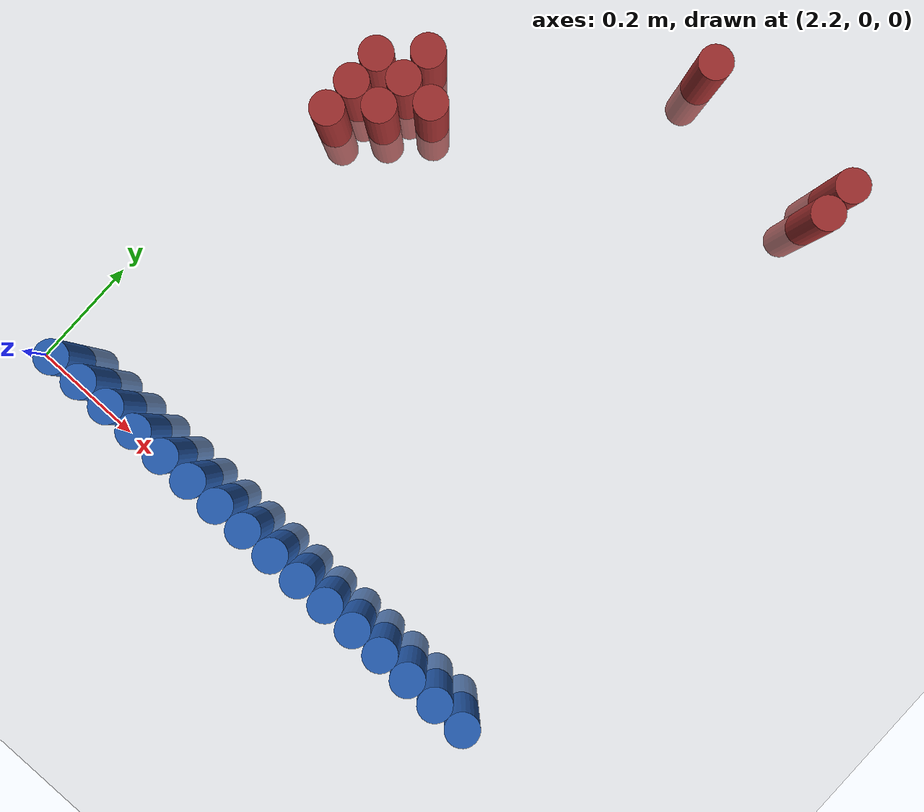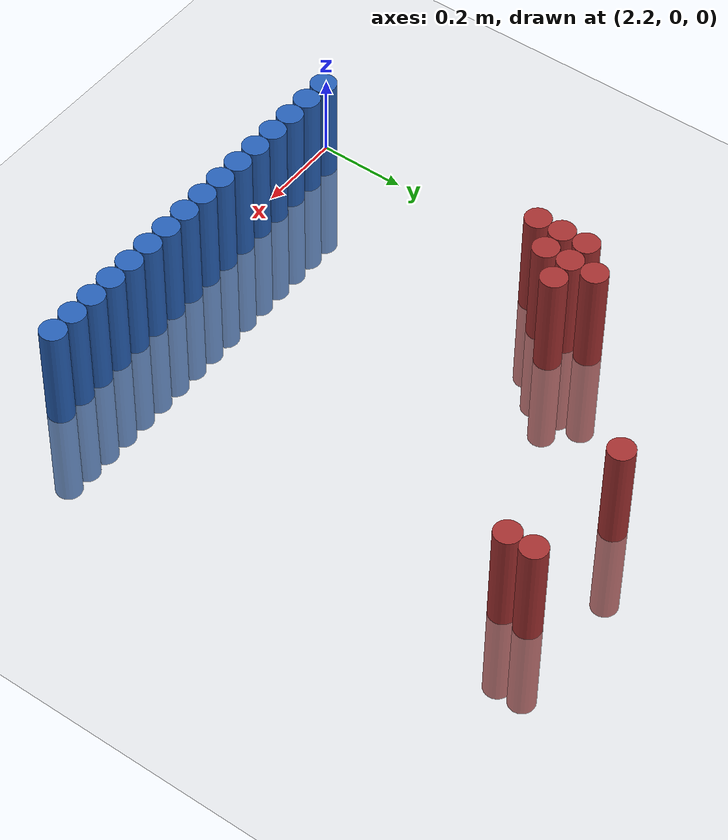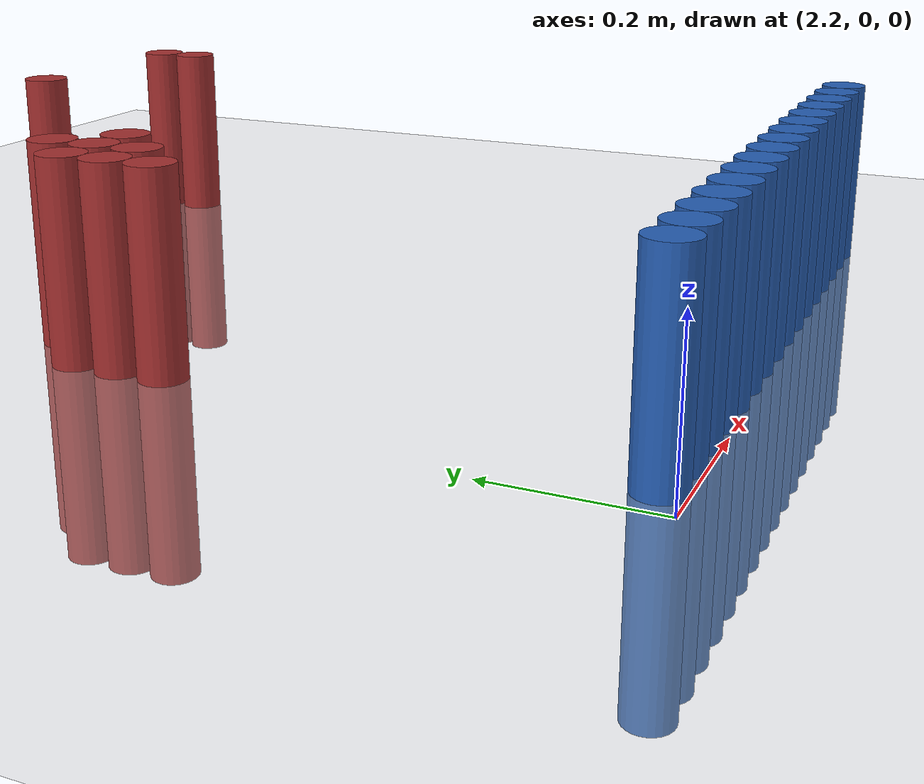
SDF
<sdf version="1.6">
 <world name="default">
  <model name="ground_plane">
   <static>1</static>
   <link name="link">
    <collision name="collision">
     <geometry><plane><normal>0 0 1</normal><size>100 100</size></plane></geometry>
     <surface><friction><ode><mu>100</mu><mu2>50</mu2></ode></friction></surface>
    </collision>
    <visual name="visual">
     <cast_shadows>0</cast_shadows>
     <geometry><plane><normal>0 0 1</normal><size>100 100</size></plane></geometry>
     <material>
      <script><uri>file://media/materials/scripts/gazebo.material</uri><name>Gazebo/Grey</name></script>
     </material>
    </visual>
   </link>
  </model>
  <model name="unit_cylinder_150">
   <static>1</static>
   <pose>2.730000 1.110000 0.000000 0.000000 0.000000 0.000000</pose>
   <link name="link">
    <inertial>
     <mass>1</mass>
     <inertia><ixx>0.145833</ixx><ixy>0</ixy><ixz>0</ixz><iyy>0.145833</iyy><iyz>0</iyz><izz>0.125</izz></inertia>
    </inertial>
    <collision name="collision">
     <geometry><cylinder><radius>0.030000</radius><length>0.5</length></cylinder></geometry>
    </collision>
    <visual name="visual">
     <geometry><cylinder><radius>0.030000</radius><length>0.5</length></cylinder></geometry>
     <material>
      <ambient>0.648000 0.192000 0.192000 1</ambient>
      <diffuse>0.648000 0.192000 0.192000 1</diffuse>
     </material>
     <material>
      <script><name>Gazebo/Grey</name><uri>file://media/materials/scripts/gazebo.material</uri></script>
     </material>
    </visual>
   </link>
  </model>
  <model name="unit_cylinder_151">
   <static>1</static>
   <pose>3.030000 1.110000 0.000000 0.000000 0.000000 0.000000</pose>
   <link name="link">
    <inertial>
     <mass>1</mass>
     <inertia><ixx>0.145833</ixx><ixy>0</ixy><ixz>0</ixz><iyy>0.145833</iyy><iyz>0</iyz><izz>0.125</izz></inertia>
    </inertial>
    <collision name="collision">
     <geometry><cylinder><radius>0.030000</radius><length>0.5</length></cylinder></geometry>
    </collision>
    <visual name="visual">
     <geometry><cylinder><radius>0.030000</radius><length>0.5</length></cylinder></geometry>
     <material>
      <ambient>0.648000 0.192000 0.192000 1</ambient>
      <diffuse>0.648000 0.192000 0.192000 1</diffuse>
     </material>
     <material>
      <script><name>Gazebo/Grey</name><uri>file://media/materials/scripts/gazebo.material</uri></script>
     </material>
    </visual>
   </link>
  </model>
  <model name="unit_cylinder_153">
   <static>1</static>
   <pose>3.030000 1.050000 0.000000 0.000000 0.000000 0.000000</pose>
   <link name="link">
    <inertial>
     <mass>1</mass>
     <inertia><ixx>0.145833</ixx><ixy>0</ixy><ixz>0</ixz><iyy>0.145833</iyy><iyz>0</iyz><izz>0.125</izz></inertia>
    </inertial>
    <collision name="collision">
     <geometry><cylinder><radius>0.030000</radius><length>0.5</length></cylinder></geometry>
    </collision>
    <visual name="visual">
     <geometry><cylinder><radius>0.030000</radius><length>0.5</length></cylinder></geometry>
     <material>
      <ambient>0.648000 0.192000 0.192000 1</ambient>
      <diffuse>0.648000 0.192000 0.192000 1</diffuse>
     </material>
     <material>
      <script><name>Gazebo/Grey</name><uri>file://media/materials/scripts/gazebo.material</uri></script>
     </material>
    </visual>
   </link>
  </model>
  <model name="unit_cylinder_158">
   <static>1</static>
   <pose>2.370000 0.810000 0.000000 0.000000 0.000000 0.000000</pose>
   <link name="link">
    <inertial>
     <mass>1</mass>
     <inertia><ixx>0.145833</ixx><ixy>0</ixy><ixz>0</ixz><iyy>0.145833</iyy><iyz>0</iyz><izz>0.125</izz></inertia>
    </inertial>
    <collision name="collision">
     <geometry><cylinder><radius>0.030000</radius><length>0.5</length></cylinder></geometry>
    </collision>
    <visual name="visual">
     <geometry><cylinder><radius>0.030000</radius><length>0.5</length></cylinder></geometry>
     <material>
      <ambient>0.648000 0.192000 0.192000 1</ambient>
      <diffuse>0.648000 0.192000 0.192000 1</diffuse>
     </material>
     <material>
      <script><name>Gazebo/Grey</name><uri>file://media/materials/scripts/gazebo.material</uri></script>
     </material>
    </visual>
   </link>
  </model>
  <model name="unit_cylinder_162">
   <static>1</static>
   <pose>2.310000 0.750000 0.000000 0.000000 0.000000 0.000000</pose>
   <link name="link">
    <inertial>
     <mass>1</mass>
     <inertia><ixx>0.145833</ixx><ixy>0</ixy><ixz>0</ixz><iyy>0.145833</iyy><iyz>0</iyz><izz>0.125</izz></inertia>
    </inertial>
    <collision name="collision">
     <geometry><cylinder><radius>0.030000</radius><length>0.5</length></cylinder></geometry>
    </collision>
    <visual name="visual">
     <geometry><cylinder><radius>0.030000</radius><length>0.5</length></cylinder></geometry>
     <material>
      <ambient>0.648000 0.192000 0.192000 1</ambient>
      <diffuse>0.648000 0.192000 0.192000 1</diffuse>
     </material>
     <material>
      <script><name>Gazebo/Grey</name><uri>file://media/materials/scripts/gazebo.material</uri></script>
     </material>
    </visual>
   </link>
  </model>
  <model name="unit_cylinder_163">
   <static>1</static>
   <pose>2.370000 0.750000 0.000000 0.000000 0.000000 0.000000</pose>
   <link name="link">
    <inertial>
     <mass>1</mass>
     <inertia><ixx>0.145833</ixx><ixy>0</ixy><ixz>0</ixz><iyy>0.145833</iyy><iyz>0</iyz><izz>0.125</izz></inertia>
    </inertial>
    <collision name="collision">
     <geometry><cylinder><radius>0.030000</radius><length>0.5</length></cylinder></geometry>
    </collision>
    <visual name="visual">
     <geometry><cylinder><radius>0.030000</radius><length>0.5</length></cylinder></geometry>
     <material>
      <ambient>0.648000 0.192000 0.192000 1</ambient>
      <diffuse>0.648000 0.192000 0.192000 1</diffuse>
     </material>
     <material>
      <script><name>Gazebo/Grey</name><uri>file://media/materials/scripts/gazebo.material</uri></script>
     </material>
    </visual>
   </link>
  </model>
  <model name="unit_cylinder_164">
   <static>1</static>
   <pose>2.430000 0.750000 0.000000 0.000000 0.000000 0.000000</pose>
   <link name="link">
    <inertial>
     <mass>1</mass>
     <inertia><ixx>0.145833</ixx><ixy>0</ixy><ixz>0</ixz><iyy>0.145833</iyy><iyz>0</iyz><izz>0.125</izz></inertia>
    </inertial>
    <collision name="collision">
     <geometry><cylinder><radius>0.030000</radius><length>0.5</length></cylinder></geometry>
    </collision>
    <visual name="visual">
     <geometry><cylinder><radius>0.030000</radius><length>0.5</length></cylinder></geometry>
     <material>
      <ambient>0.648000 0.192000 0.192000 1</ambient>
      <diffuse>0.648000 0.192000 0.192000 1</diffuse>
     </material>
     <material>
      <script><name>Gazebo/Grey</name><uri>file://media/materials/scripts/gazebo.material</uri></script>
     </material>
    </visual>
   </link>
  </model>
  <model name="unit_cylinder_167">
   <static>1</static>
   <pose>2.310000 0.690000 0.000000 0.000000 0.000000 0.000000</pose>
   <link name="link">
    <inertial>
     <mass>1</mass>
     <inertia><ixx>0.145833</ixx><ixy>0</ixy><ixz>0</ixz><iyy>0.145833</iyy><iyz>0</iyz><izz>0.125</izz></inertia>
    </inertial>
    <collision name="collision">
     <geometry><cylinder><radius>0.030000</radius><length>0.5</length></cylinder></geometry>
    </collision>
    <visual name="visual">
     <geometry><cylinder><radius>0.030000</radius><length>0.5</length></cylinder></geometry>
     <material>
      <ambient>0.648000 0.192000 0.192000 1</ambient>
      <diffuse>0.648000 0.192000 0.192000 1</diffuse>
     </material>
     <material>
      <script><name>Gazebo/Grey</name><uri>file://media/materials/scripts/gazebo.material</uri></script>
     </material>
    </visual>
   </link>
  </model>
  <model name="unit_cylinder_168">
   <static>1</static>
   <pose>2.370000 0.690000 0.000000 0.000000 0.000000 0.000000</pose>
   <link name="link">
    <inertial>
     <mass>1</mass>
     <inertia><ixx>0.145833</ixx><ixy>0</ixy><ixz>0</ixz><iyy>0.145833</iyy><iyz>0</iyz><izz>0.125</izz></inertia>
    </inertial>
    <collision name="collision">
     <geometry><cylinder><radius>0.030000</radius><length>0.5</length></cylinder></geometry>
    </collision>
    <visual name="visual">
     <geometry><cylinder><radius>0.030000</radius><length>0.5</length></cylinder></geometry>
     <material>
      <ambient>0.648000 0.192000 0.192000 1</ambient>
      <diffuse>0.648000 0.192000 0.192000 1</diffuse>
     </material>
     <material>
      <script><name>Gazebo/Grey</name><uri>file://media/materials/scripts/gazebo.material</uri></script>
     </material>
    </visual>
   </link>
  </model>
  <model name="unit_cylinder_169">
   <static>1</static>
   <pose>2.310000 0.630000 0.000000 0.000000 0.000000 0.000000</pose>
   <link name="link">
    <inertial>
     <mass>1</mass>
     <inertia><ixx>0.145833</ixx><ixy>0</ixy><ixz>0</ixz><iyy>0.145833</iyy><iyz>0</iyz><izz>0.125</izz></inertia>
    </inertial>
    <collision name="collision">
     <geometry><cylinder><radius>0.030000</radius><length>0.5</length></cylinder></geometry>
    </collision>
    <visual name="visual">
     <geometry><cylinder><radius>0.030000</radius><length>0.5</length></cylinder></geometry>
     <material>
      <ambient>0.648000 0.192000 0.192000 1</ambient>
      <diffuse>0.648000 0.192000 0.192000 1</diffuse>
     </material>
     <material>
      <script><name>Gazebo/Grey</name><uri>file://media/materials/scripts/gazebo.material</uri></script>
     </material>
    </visual>
   </link>
  </model>
  <model name="unit_cylinder_181">
   <static>1</static>
   <pose>2.250000 0.030000 0.000000 0.000000 0.000000 0.000000</pose>
   <link name="link">
    <inertial>
     <mass>1</mass>
     <inertia><ixx>0.145833</ixx><ixy>0</ixy><ixz>0</ixz><iyy>0.145833</iyy><iyz>0</iyz><izz>0.125</izz></inertia>
    </inertial>
    <collision name="collision">
     <geometry><cylinder><radius>0.030000</radius><length>0.5</length></cylinder></geometry>
    </collision>
    <visual name="visual">
     <geometry><cylinder><radius>0.030000</radius><length>0.5</length></cylinder></geometry>
     <material>
      <ambient>0.152000 0.379000 0.720000 1</ambient>
      <diffuse>0.152000 0.379000 0.720000 1</diffuse>
     </material>
     <material>
      <script><name>Gazebo/Grey</name><uri>file://media/materials/scripts/gazebo.material</uri></script>
     </material>
    </visual>
   </link>
  </model>
  <model name="unit_cylinder_182">
   <static>1</static>
   <pose>2.310000 0.030000 0.000000 0.000000 0.000000 0.000000</pose>
   <link name="link">
    <inertial>
     <mass>1</mass>
     <inertia><ixx>0.145833</ixx><ixy>0</ixy><ixz>0</ixz><iyy>0.145833</iyy><iyz>0</iyz><izz>0.125</izz></inertia>
    </inertial>
    <collision name="collision">
     <geometry><cylinder><radius>0.030000</radius><length>0.5</length></cylinder></geometry>
    </collision>
    <visual name="visual">
     <geometry><cylinder><radius>0.030000</radius><length>0.5</length></cylinder></geometry>
     <material>
      <ambient>0.152000 0.379000 0.720000 1</ambient>
      <diffuse>0.152000 0.379000 0.720000 1</diffuse>
     </material>
     <material>
      <script><name>Gazebo/Grey</name><uri>file://media/materials/scripts/gazebo.material</uri></script>
     </material>
    </visual>
   </link>
  </model>
  <model name="unit_cylinder_183">
   <static>1</static>
   <pose>2.370000 0.030000 0.000000 0.000000 0.000000 0.000000</pose>
   <link name="link">
    <inertial>
     <mass>1</mass>
     <inertia><ixx>0.145833</ixx><ixy>0</ixy><ixz>0</ixz><iyy>0.145833</iyy><iyz>0</iyz><izz>0.125</izz></inertia>
    </inertial>
    <collision name="collision">
     <geometry><cylinder><radius>0.030000</radius><length>0.5</length></cylinder></geometry>
    </collision>
    <visual name="visual">
     <geometry><cylinder><radius>0.030000</radius><length>0.5</length></cylinder></geometry>
     <material>
      <ambient>0.152000 0.379000 0.720000 1</ambient>
      <diffuse>0.152000 0.379000 0.720000 1</diffuse>
     </material>
     <material>
      <script><name>Gazebo/Grey</name><uri>file://media/materials/scripts/gazebo.material</uri></script>
     </material>
    </visual>
   </link>
  </model>
  <model name="unit_cylinder_184">
   <static>1</static>
   <pose>2.430000 0.030000 0.000000 0.000000 0.000000 0.000000</pose>
   <link name="link">
    <inertial>
     <mass>1</mass>
     <inertia><ixx>0.145833</ixx><ixy>0</ixy><ixz>0</ixz><iyy>0.145833</iyy><iyz>0</iyz><izz>0.125</izz></inertia>
    </inertial>
    <collision name="collision">
     <geometry><cylinder><radius>0.030000</radius><length>0.5</length></cylinder></geometry>
    </collision>
    <visual name="visual">
     <geometry><cylinder><radius>0.030000</radius><length>0.5</length></cylinder></geometry>
     <material>
      <ambient>0.152000 0.379000 0.720000 1</ambient>
      <diffuse>0.152000 0.379000 0.720000 1</diffuse>
     </material>
     <material>
      <script><name>Gazebo/Grey</name><uri>file://media/materials/scripts/gazebo.material</uri></script>
     </material>
    </visual>
   </link>
  </model>
  <model name="unit_cylinder_185">
   <static>1</static>
   <pose>2.490000 0.030000 0.000000 0.000000 0.000000 0.000000</pose>
   <link name="link">
    <inertial>
     <mass>1</mass>
     <inertia><ixx>0.145833</ixx><ixy>0</ixy><ixz>0</ixz><iyy>0.145833</iyy><iyz>0</iyz><izz>0.125</izz></inertia>
    </inertial>
    <collision name="collision">
     <geometry><cylinder><radius>0.030000</radius><length>0.5</length></cylinder></geometry>
    </collision>
    <visual name="visual">
     <geometry><cylinder><radius>0.030000</radius><length>0.5</length></cylinder></geometry>
     <material>
      <ambient>0.152000 0.379000 0.720000 1</ambient>
      <diffuse>0.152000 0.379000 0.720000 1</diffuse>
     </material>
     <material>
      <script><name>Gazebo/Grey</name><uri>file://media/materials/scripts/gazebo.material</uri></script>
     </material>
    </visual>
   </link>
  </model>
  <model name="unit_cylinder_186">
   <static>1</static>
   <pose>2.550000 0.030000 0.000000 0.000000 0.000000 0.000000</pose>
   <link name="link">
    <inertial>
     <mass>1</mass>
     <inertia><ixx>0.145833</ixx><ixy>0</ixy><ixz>0</ixz><iyy>0.145833</iyy><iyz>0</iyz><izz>0.125</izz></inertia>
    </inertial>
    <collision name="collision">
     <geometry><cylinder><radius>0.030000</radius><length>0.5</length></cylinder></geometry>
    </collision>
    <visual name="visual">
     <geometry><cylinder><radius>0.030000</radius><length>0.5</length></cylinder></geometry>
     <material>
      <ambient>0.152000 0.379000 0.720000 1</ambient>
      <diffuse>0.152000 0.379000 0.720000 1</diffuse>
     </material>
     <material>
      <script><name>Gazebo/Grey</name><uri>file://media/materials/scripts/gazebo.material</uri></script>
     </material>
    </visual>
   </link>
  </model>
  <model name="unit_cylinder_187">
   <static>1</static>
   <pose>2.610000 0.030000 0.000000 0.000000 0.000000 0.000000</pose>
   <link name="link">
    <inertial>
     <mass>1</mass>
     <inertia><ixx>0.145833</ixx><ixy>0</ixy><ixz>0</ixz><iyy>0.145833</iyy><iyz>0</iyz><izz>0.125</izz></inertia>
    </inertial>
    <collision name="collision">
     <geometry><cylinder><radius>0.030000</radius><length>0.5</length></cylinder></geometry>
    </collision>
    <visual name="visual">
     <geometry><cylinder><radius>0.030000</radius><length>0.5</length></cylinder></geometry>
     <material>
      <ambient>0.152000 0.379000 0.720000 1</ambient>
      <diffuse>0.152000 0.379000 0.720000 1</diffuse>
     </material>
     <material>
      <script><name>Gazebo/Grey</name><uri>file://media/materials/scripts/gazebo.material</uri></script>
     </material>
    </visual>
   </link>
  </model>
  <model name="unit_cylinder_188">
   <static>1</static>
   <pose>2.670000 0.030000 0.000000 0.000000 0.000000 0.000000</pose>
   <link name="link">
    <inertial>
     <mass>1</mass>
     <inertia><ixx>0.145833</ixx><ixy>0</ixy><ixz>0</ixz><iyy>0.145833</iyy><iyz>0</iyz><izz>0.125</izz></inertia>
    </inertial>
    <collision name="collision">
     <geometry><cylinder><radius>0.030000</radius><length>0.5</length></cylinder></geometry>
    </collision>
    <visual name="visual">
     <geometry><cylinder><radius>0.030000</radius><length>0.5</length></cylinder></geometry>
     <material>
      <ambient>0.152000 0.379000 0.720000 1</ambient>
      <diffuse>0.152000 0.379000 0.720000 1</diffuse>
     </material>
     <material>
      <script><name>Gazebo/Grey</name><uri>file://media/materials/scripts/gazebo.material</uri></script>
     </material>
    </visual>
   </link>
  </model>
  <model name="unit_cylinder_189">
   <static>1</static>
   <pose>2.730000 0.030000 0.000000 0.000000 0.000000 0.000000</pose>
   <link name="link">
    <inertial>
     <mass>1</mass>
     <inertia><ixx>0.145833</ixx><ixy>0</ixy><ixz>0</ixz><iyy>0.145833</iyy><iyz>0</iyz><izz>0.125</izz></inertia>
    </inertial>
    <collision name="collision">
     <geometry><cylinder><radius>0.030000</radius><length>0.5</length></cylinder></geometry>
    </collision>
    <visual name="visual">
     <geometry><cylinder><radius>0.030000</radius><length>0.5</length></cylinder></geometry>
     <material>
      <ambient>0.152000 0.379000 0.720000 1</ambient>
      <diffuse>0.152000 0.379000 0.720000 1</diffuse>
     </material>
     <material>
      <script><name>Gazebo/Grey</name><uri>file://media/materials/scripts/gazebo.material</uri></script>
     </material>
    </visual>
   </link>
  </model>
  <model name="unit_cylinder_190">
   <static>1</static>
   <pose>2.790000 0.030000 0.000000 0.000000 0.000000 0.000000</pose>
   <link name="link">
    <inertial>
     <mass>1</mass>
     <inertia><ixx>0.145833</ixx><ixy>0</ixy><ixz>0</ixz><iyy>0.145833</iyy><iyz>0</iyz><izz>0.125</izz></inertia>
    </inertial>
    <collision name="collision">
     <geometry><cylinder><radius>0.030000</radius><length>0.5</length></cylinder></geometry>
    </collision>
    <visual name="visual">
     <geometry><cylinder><radius>0.030000</radius><length>0.5</length></cylinder></geometry>
     <material>
      <ambient>0.152000 0.379000 0.720000 1</ambient>
      <diffuse>0.152000 0.379000 0.720000 1</diffuse>
     </material>
     <material>
      <script><name>Gazebo/Grey</name><uri>file://media/materials/scripts/gazebo.material</uri></script>
     </material>
    </visual>
   </link>
  </model>
  <model name="unit_cylinder_191">
   <static>1</static>
   <pose>2.850000 0.030000 0.000000 0.000000 0.000000 0.000000</pose>
   <link name="link">
    <inertial>
     <mass>1</mass>
     <inertia><ixx>0.145833</ixx><ixy>0</ixy><ixz>0</ixz><iyy>0.145833</iyy><iyz>0</iyz><izz>0.125</izz></inertia>
    </inertial>
    <collision name="collision">
     <geometry><cylinder><radius>0.030000</radius><length>0.5</length></cylinder></geometry>
    </collision>
    <visual name="visual">
     <geometry><cylinder><radius>0.030000</radius><length>0.5</length></cylinder></geometry>
     <material>
      <ambient>0.152000 0.379000 0.720000 1</ambient>
      <diffuse>0.152000 0.379000 0.720000 1</diffuse>
     </material>
     <material>
      <script><name>Gazebo/Grey</name><uri>file://media/materials/scripts/gazebo.material</uri></script>
     </material>
    </visual>
   </link>
  </model>
  <model name="unit_cylinder_192">
   <static>1</static>
   <pose>2.910000 0.030000 0.000000 0.000000 0.000000 0.000000</pose>
   <link name="link">
    <inertial>
     <mass>1</mass>
     <inertia><ixx>0.145833</ixx><ixy>0</ixy><ixz>0</ixz><iyy>0.145833</iyy><iyz>0</iyz><izz>0.125</izz></inertia>
    </inertial>
    <collision name="collision">
     <geometry><cylinder><radius>0.030000</radius><length>0.5</length></cylinder></geometry>
    </collision>
    <visual name="visual">
     <geometry><cylinder><radius>0.030000</radius><length>0.5</length></cylinder></geometry>
     <material>
      <ambient>0.152000 0.379000 0.720000 1</ambient>
      <diffuse>0.152000 0.379000 0.720000 1</diffuse>
     </material>
     <material>
      <script><name>Gazebo/Grey</name><uri>file://media/materials/scripts/gazebo.material</uri></script>
     </material>
    </visual>
   </link>
  </model>
  <model name="unit_cylinder_193">
   <static>1</static>
   <pose>2.970000 0.030000 0.000000 0.000000 0.000000 0.000000</pose>
   <link name="link">
    <inertial>
     <mass>1</mass>
     <inertia><ixx>0.145833</ixx><ixy>0</ixy><ixz>0</ixz><iyy>0.145833</iyy><iyz>0</iyz><izz>0.125</izz></inertia>
    </inertial>
    <collision name="collision">
     <geometry><cylinder><radius>0.030000</radius><length>0.5</length></cylinder></geometry>
    </collision>
    <visual name="visual">
     <geometry><cylinder><radius>0.030000</radius><length>0.5</length></cylinder></geometry>
     <material>
      <ambient>0.152000 0.379000 0.720000 1</ambient>
      <diffuse>0.152000 0.379000 0.720000 1</diffuse>
     </material>
     <material>
      <script><name>Gazebo/Grey</name><uri>file://media/materials/scripts/gazebo.material</uri></script>
     </material>
    </visual>
   </link>
  </model>
  <model name="unit_cylinder_194">
   <static>1</static>
   <pose>3.030000 0.030000 0.000000 0.000000 0.000000 0.000000</pose>
   <link name="link">
    <inertial>
     <mass>1</mass>
     <inertia><ixx>0.145833</ixx><ixy>0</ixy><ixz>0</ixz><iyy>0.145833</iyy><iyz>0</iyz><izz>0.125</izz></inertia>
    </inertial>
    <collision name="collision">
     <geometry><cylinder><radius>0.030000</radius><length>0.5</length></cylinder></geometry>
    </collision>
    <visual name="visual">
     <geometry><cylinder><radius>0.030000</radius><length>0.5</length></cylinder></geometry>
     <material>
      <ambient>0.152000 0.379000 0.720000 1</ambient>
      <diffuse>0.152000 0.379000 0.720000 1</diffuse>
     </material>
     <material>
      <script><name>Gazebo/Grey</name><uri>file://media/materials/scripts/gazebo.material</uri></script>
     </material>
    </visual>
   </link>
  </model>
  <model name="unit_cylinder_195">
   <static>1</static>
   <pose>3.090000 0.030000 0.000000 0.000000 0.000000 0.000000</pose>
   <link name="link">
    <inertial>
     <mass>1</mass>
     <inertia><ixx>0.145833</ixx><ixy>0</ixy><ixz>0</ixz><iyy>0.145833</iyy><iyz>0</iyz><izz>0.125</izz></inertia>
    </inertial>
    <collision name="collision">
     <geometry><cylinder><radius>0.030000</radius><length>0.5</length></cylinder></geometry>
    </collision>
    <visual name="visual">
     <geometry><cylinder><radius>0.030000</radius><length>0.5</length></cylinder></geometry>
     <material>
      <ambient>0.152000 0.379000 0.720000 1</ambient>
      <diffuse>0.152000 0.379000 0.720000 1</diffuse>
     </material>
     <material>
      <script><name>Gazebo/Grey</name><uri>file://media/materials/scripts/gazebo.material</uri></script>
     </material>
    </visual>
   </link>
  </model>
  <model name="unit_cylinder_196">
   <static>1</static>
   <pose>3.150000 0.030000 0.000000 0.000000 0.000000 0.000000</pose>
   <link name="link">
    <inertial>
     <mass>1</mass>
     <inertia><ixx>0.145833</ixx><ixy>0</ixy><ixz>0</ixz><iyy>0.145833</iyy><iyz>0</iyz><izz>0.125</izz></inertia>
    </inertial>
    <collision name="collision">
     <geometry><cylinder><radius>0.030000</radius><length>0.5</length></cylinder></geometry>
    </collision>
    <visual name="visual">
     <geometry><cylinder><radius>0.030000</radius><length>0.5</length></cylinder></geometry>
     <material>
      <ambient>0.152000 0.379000 0.720000 1</ambient>
      <diffuse>0.152000 0.379000 0.720000 1</diffuse>
     </material>
     <material>
      <script><name>Gazebo/Grey</name><uri>file://media/materials/scripts/gazebo.material</uri></script>
     </material>
    </visual>
   </link>
  </model>
 </world>
</sdf>
